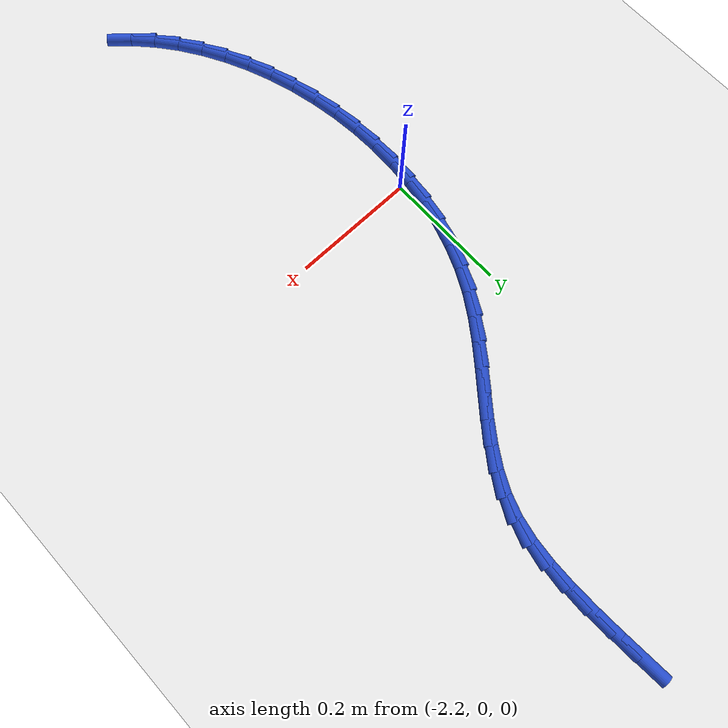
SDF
<sdf version="1.6">
 <world name="default">
  <model name="ground_plane">
   <static>1</static>
   <link name="link">
    <collision name="collision">
     <geometry><plane><normal>0 0 1</normal><size>100 100</size></plane></geometry>
     <surface><friction><ode><mu>100</mu><mu2>50</mu2></ode></friction></surface>
    </collision>
    <visual name="visual">
     <cast_shadows>0</cast_shadows>
     <geometry><plane><normal>0 0 1</normal><size>100 100</size></plane></geometry>
     <material>
      <script><uri>file://media/materials/scripts/gazebo.material</uri><name>Gazebo/WhiteGlow</name></script>
     </material>
    </visual>
   </link>
  </model>
  <model name="line">
   <link name="link_85">
    <pose>-1.9560078254601152 0.7298732089743323 0.01 0 1.57 -1.511912459957005</pose>
    <collision name="collision">
     <geometry><cylinder><radius>0.01</radius><length>0.08</length></cylinder></geometry>
    </collision>
    <visual name="visual">
     <material>
      <script><name>Gazebo/Blue</name><uri>file://media/materials/scripts/gazebo.material</uri></script>
     </material>
     <geometry><cylinder><radius>0.01</radius><length>0.08</length></cylinder></geometry>
    </visual>
   </link>
   <link name="link_86">
    <pose>-1.9533315352913094 0.6844754383890127 0.01 0 1.57 -1.529011360703828</pose>
    <collision name="collision">
     <geometry><cylinder><radius>0.01</radius><length>0.08</length></cylinder></geometry>
    </collision>
    <visual name="visual">
     <material>
      <script><name>Gazebo/Blue</name><uri>file://media/materials/scripts/gazebo.material</uri></script>
     </material>
     <geometry><cylinder><radius>0.01</radius><length>0.08</length></cylinder></geometry>
    </visual>
   </link>
   <link name="link_87">
    <pose>-1.9514861861829915 0.6403381523540678 0.01 0 1.57 -1.5576961679580639</pose>
    <collision name="collision">
     <geometry><cylinder><radius>0.01</radius><length>0.08</length></cylinder></geometry>
    </collision>
    <visual name="visual">
     <material>
      <script><name>Gazebo/Blue</name><uri>file://media/materials/scripts/gazebo.material</uri></script>
     </material>
     <geometry><cylinder><radius>0.01</radius><length>0.08</length></cylinder></geometry>
    </visual>
   </link>
   <link name="link_88">
    <pose>-1.9509324071336889 0.5980678732634406 0.01 0 1.57 1.5370765639163415</pose>
    <collision name="collision">
     <geometry><cylinder><radius>0.01</radius><length>0.08</length></cylinder></geometry>
    </collision>
    <visual name="visual">
     <material>
      <script><name>Gazebo/Blue</name><uri>file://media/materials/scripts/gazebo.material</uri></script>
     </material>
     <geometry><cylinder><radius>0.01</radius><length>0.08</length></cylinder></geometry>
    </visual>
   </link>
   <link name="link_89">
    <pose>-1.9522843035762854 0.557990959621712 0.01 0 1.57 1.4635349359666723</pose>
    <collision name="collision">
     <geometry><cylinder><radius>0.01</radius><length>0.08</length></cylinder></geometry>
    </collision>
    <visual name="visual">
     <material>
      <script><name>Gazebo/Blue</name><uri>file://media/materials/scripts/gazebo.material</uri></script>
     </material>
     <geometry><cylinder><radius>0.01</radius><length>0.08</length></cylinder></geometry>
    </visual>
   </link>
   <link name="link_90">
    <pose>-1.9563704069525913 0.5200423455112528 0.01 0 1.57 1.3605329520495244</pose>
    <collision name="collision">
     <geometry><cylinder><radius>0.01</radius><length>0.08</length></cylinder></geometry>
    </collision>
    <visual name="visual">
     <material>
      <script><name>Gazebo/Blue</name><uri>file://media/materials/scripts/gazebo.material</uri></script>
     </material>
     <geometry><cylinder><radius>0.01</radius><length>0.08</length></cylinder></geometry>
    </visual>
   </link>
   <link name="link_91">
    <pose>-1.9640352004362955 0.48412784589094177 0.01 0 1.57 1.229978556746127</pose>
    <collision name="collision">
     <geometry><cylinder><radius>0.01</radius><length>0.08</length></cylinder></geometry>
    </collision>
    <visual name="visual">
     <material>
      <script><name>Gazebo/Blue</name><uri>file://media/materials/scripts/gazebo.material</uri></script>
     </material>
     <geometry><cylinder><radius>0.01</radius><length>0.08</length></cylinder></geometry>
    </visual>
   </link>
   <link name="link_92">
    <pose>-1.9760871636983892 0.45014584344557457 0.01 0 1.57 1.101145402642583</pose>
    <collision name="collision">
     <geometry><cylinder><radius>0.01</radius><length>0.08</length></cylinder></geometry>
    </collision>
    <visual name="visual">
     <material>
      <script><name>Gazebo/Blue</name><uri>file://media/materials/scripts/gazebo.material</uri></script>
     </material>
     <geometry><cylinder><radius>0.01</radius><length>0.08</length></cylinder></geometry>
    </visual>
   </link>
   <link name="link_93">
    <pose>-1.992492921843389 0.4178209351611334 0.01 0 1.57 1.002379648864908</pose>
    <collision name="collision">
     <geometry><cylinder><radius>0.01</radius><length>0.08</length></cylinder></geometry>
    </collision>
    <visual name="visual">
     <material>
      <script><name>Gazebo/Blue</name><uri>file://media/materials/scripts/gazebo.material</uri></script>
     </material>
     <geometry><cylinder><radius>0.01</radius><length>0.08</length></cylinder></geometry>
    </visual>
   </link>
   <link name="link_94">
    <pose>-2.012369521328703 0.38670233782758484 0.01 0 1.57 0.9347366790663412</pose>
    <collision name="collision">
     <geometry><cylinder><radius>0.01</radius><length>0.08</length></cylinder></geometry>
    </collision>
    <visual name="visual">
     <material>
      <script><name>Gazebo/Blue</name><uri>file://media/materials/scripts/gazebo.material</uri></script>
     </material>
     <geometry><cylinder><radius>0.01</radius><length>0.08</length></cylinder></geometry>
    </visual>
   </link>
   <link name="link_95">
    <pose>-2.0347964602525175 0.3563315170530328 0.01 0 1.57 0.8962274287948078</pose>
    <collision name="collision">
     <geometry><cylinder><radius>0.01</radius><length>0.08</length></cylinder></geometry>
    </collision>
    <visual name="visual">
     <material>
      <script><name>Gazebo/Blue</name><uri>file://media/materials/scripts/gazebo.material</uri></script>
     </material>
     <geometry><cylinder><radius>0.01</radius><length>0.08</length></cylinder></geometry>
    </visual>
   </link>
   <link name="link_96">
    <pose>-2.058853236713022 0.32624993844558203 0.01 0 1.57 0.8847619582352867</pose>
    <collision name="collision">
     <geometry><cylinder><radius>0.01</radius><length>0.08</length></cylinder></geometry>
    </collision>
    <visual name="visual">
     <material>
      <script><name>Gazebo/Blue</name><uri>file://media/materials/scripts/gazebo.material</uri></script>
     </material>
     <geometry><cylinder><radius>0.01</radius><length>0.08</length></cylinder></geometry>
    </visual>
   </link>
   <link name="link_97">
    <pose>-2.083619348808406 0.29599906761333616 0.01 0 1.57 0.8989849952550716</pose>
    <collision name="collision">
     <geometry><cylinder><radius>0.01</radius><length>0.08</length></cylinder></geometry>
    </collision>
    <visual name="visual">
     <material>
      <script><name>Gazebo/Blue</name><uri>file://media/materials/scripts/gazebo.material</uri></script>
     </material>
     <geometry><cylinder><radius>0.01</radius><length>0.08</length></cylinder></geometry>
    </visual>
   </link>
   <link name="link_98">
    <pose>-2.108174294636855 0.26512037016439977 0.01 0 1.57 0.9384089984841676</pose>
    <collision name="collision">
     <geometry><cylinder><radius>0.01</radius><length>0.08</length></cylinder></geometry>
    </collision>
    <visual name="visual">
     <material>
      <script><name>Gazebo/Blue</name><uri>file://media/materials/scripts/gazebo.material</uri></script>
     </material>
     <geometry><cylinder><radius>0.01</radius><length>0.08</length></cylinder></geometry>
    </visual>
   </link>
   <link name="link_99">
    <pose>-2.1315975722965588 0.23315531170687698 0.01 0 1.57 1.003078110541893</pose>
    <collision name="collision">
     <geometry><cylinder><radius>0.01</radius><length>0.08</length></cylinder></geometry>
    </collision>
    <visual name="visual">
     <material>
      <script><name>Gazebo/Blue</name><uri>file://media/materials/scripts/gazebo.material</uri></script>
     </material>
     <geometry><cylinder><radius>0.01</radius><length>0.08</length></cylinder></geometry>
    </visual>
   </link>
   <link name="link_100">
    <pose>-2.152968679885705 0.19964535784887202 0.01 0 1.57 1.0897424755845704</pose>
    <collision name="collision">
     <geometry><cylinder><radius>0.01</radius><length>0.08</length></cylinder></geometry>
    </collision>
    <visual name="visual">
     <material>
      <script><name>Gazebo/Blue</name><uri>file://media/materials/scripts/gazebo.material</uri></script>
     </material>
     <geometry><cylinder><radius>0.01</radius><length>0.08</length></cylinder></geometry>
    </visual>
   </link>
   <link name="link_101">
    <pose>-2.171465822064752 0.16420689721593096 0.01 0 1.57 1.1783790032146493</pose>
    <collision name="collision">
     <geometry><cylinder><radius>0.01</radius><length>0.08</length></cylinder></geometry>
    </collision>
    <visual name="visual">
     <material>
      <script><name>Gazebo/Blue</name><uri>file://media/materials/scripts/gazebo.material</uri></script>
     </material>
     <geometry><cylinder><radius>0.01</radius><length>0.08</length></cylinder></geometry>
    </visual>
   </link>
   <link name="link_102">
    <pose>-2.1868934300383454 0.126931654431678 0.01 0 1.57 1.2615539943299752</pose>
    <collision name="collision">
     <geometry><cylinder><radius>0.01</radius><length>0.08</length></cylinder></geometry>
    </collision>
    <visual name="visual">
     <material>
      <script><name>Gazebo/Blue</name><uri>file://media/materials/scripts/gazebo.material</uri></script>
     </material>
     <geometry><cylinder><radius>0.01</radius><length>0.08</length></cylinder></geometry>
    </visual>
   </link>
   <link name="link_103">
    <pose>-2.19930074621588 0.08809717757201214 0.01 0 1.57 1.3397567844039873</pose>
    <collision name="collision">
     <geometry><cylinder><radius>0.01</radius><length>0.08</length></cylinder></geometry>
    </collision>
    <visual name="visual">
     <material>
      <script><name>Gazebo/Blue</name><uri>file://media/materials/scripts/gazebo.material</uri></script>
     </material>
     <geometry><cylinder><radius>0.01</radius><length>0.08</length></cylinder></geometry>
    </visual>
   </link>
   <link name="link_104">
    <pose>-2.2087375780199454 0.04798144358496218 0.01 0 1.57 1.413632643874463</pose>
    <collision name="collision">
     <geometry><cylinder><radius>0.01</radius><length>0.08</length></cylinder></geometry>
    </collision>
    <visual name="visual">
     <material>
      <script><name>Gazebo/Blue</name><uri>file://media/materials/scripts/gazebo.material</uri></script>
     </material>
     <geometry><cylinder><radius>0.01</radius><length>0.08</length></cylinder></geometry>
    </visual>
   </link>
   <link name="link_105">
    <pose>-2.2152537328731294 0.006862429418557037 0.01 0 1.57 1.4839002835513833</pose>
    <collision name="collision">
     <geometry><cylinder><radius>0.01</radius><length>0.08</length></cylinder></geometry>
    </collision>
    <visual name="visual">
     <material>
      <script><name>Gazebo/Blue</name><uri>file://media/materials/scripts/gazebo.material</uri></script>
     </material>
     <geometry><cylinder><radius>0.01</radius><length>0.08</length></cylinder></geometry>
    </visual>
   </link>
   <link name="link_106">
    <pose>-2.218899018198022 -0.03498188797917434 0.01 0 1.57 1.551309761165724</pose>
    <collision name="collision">
     <geometry><cylinder><radius>0.01</radius><length>0.08</length></cylinder></geometry>
    </collision>
    <visual name="visual">
     <material>
      <script><name>Gazebo/Blue</name><uri>file://media/materials/scripts/gazebo.material</uri></script>
     </material>
     <geometry><cylinder><radius>0.01</radius><length>0.08</length></cylinder></geometry>
    </visual>
   </link>
   <link name="link_107">
    <pose>-2.219723241417214 -0.0772735316602031 0.01 0 1.57 -1.524973834030474</pose>
    <collision name="collision">
     <geometry><cylinder><radius>0.01</radius><length>0.08</length></cylinder></geometry>
    </collision>
    <visual name="visual">
     <material>
      <script><name>Gazebo/Blue</name><uri>file://media/materials/scripts/gazebo.material</uri></script>
     </material>
     <geometry><cylinder><radius>0.01</radius><length>0.08</length></cylinder></geometry>
    </visual>
   </link>
   <link name="link_108">
    <pose>-2.2177762099532927 -0.11973452467650027 0.01 0 1.57 -1.461010080639621</pose>
    <collision name="collision">
     <geometry><cylinder><radius>0.01</radius><length>0.08</length></cylinder></geometry>
    </collision>
    <visual name="visual">
     <material>
      <script><name>Gazebo/Blue</name><uri>file://media/materials/scripts/gazebo.material</uri></script>
     </material>
     <geometry><cylinder><radius>0.01</radius><length>0.08</length></cylinder></geometry>
    </visual>
   </link>
   <link name="link_109">
    <pose>-2.213107731228848 -0.16208689008003685 0.01 0 1.57 -1.3976405923603086</pose>
    <collision name="collision">
     <geometry><cylinder><radius>0.01</radius><length>0.08</length></cylinder></geometry>
    </collision>
    <visual name="visual">
     <material>
      <script><name>Gazebo/Blue</name><uri>file://media/materials/scripts/gazebo.material</uri></script>
     </material>
     <geometry><cylinder><radius>0.01</radius><length>0.08</length></cylinder></geometry>
    </visual>
   </link>
   <link name="link_110">
    <pose>-2.2057676126664707 -0.20405265092278413 0.01 0 1.57 -1.334114573618905</pose>
    <collision name="collision">
     <geometry><cylinder><radius>0.01</radius><length>0.08</length></cylinder></geometry>
    </collision>
    <visual name="visual">
     <material>
      <script><name>Gazebo/Blue</name><uri>file://media/materials/scripts/gazebo.material</uri></script>
     </material>
     <geometry><cylinder><radius>0.01</radius><length>0.08</length></cylinder></geometry>
    </visual>
   </link>
   <link name="link_111">
    <pose>-2.195805661688749 -0.24535383025671312 0.01 0 1.57 -1.269675255398987</pose>
    <collision name="collision">
     <geometry><cylinder><radius>0.01</radius><length>0.08</length></cylinder></geometry>
    </collision>
    <visual name="visual">
     <material>
      <script><name>Gazebo/Blue</name><uri>file://media/materials/scripts/gazebo.material</uri></script>
     </material>
     <geometry><cylinder><radius>0.01</radius><length>0.08</length></cylinder></geometry>
    </visual>
   </link>
   <link name="link_112">
    <pose>-2.183271685718273 -0.28571245113379484 0.01 0 1.57 -1.2035538569398505</pose>
    <collision name="collision">
     <geometry><cylinder><radius>0.01</radius><length>0.08</length></cylinder></geometry>
    </collision>
    <visual name="visual">
     <material>
      <script><name>Gazebo/Blue</name><uri>file://media/materials/scripts/gazebo.material</uri></script>
     </material>
     <geometry><cylinder><radius>0.01</radius><length>0.08</length></cylinder></geometry>
    </visual>
   </link>
   <link name="link_113">
    <pose>-2.1682154921776307 -0.3248505366060004 0.01 0 1.57 -1.134966433561842</pose>
    <collision name="collision">
     <geometry><cylinder><radius>0.01</radius><length>0.08</length></cylinder></geometry>
    </collision>
    <visual name="visual">
     <material>
      <script><name>Gazebo/Blue</name><uri>file://media/materials/scripts/gazebo.material</uri></script>
     </material>
     <geometry><cylinder><radius>0.01</radius><length>0.08</length></cylinder></geometry>
    </visual>
   </link>
   <link name="link_114">
    <pose>-2.150686888489413 -0.36249010972530094 0.01 0 1.57 -1.0631169353441734</pose>
    <collision name="collision">
     <geometry><cylinder><radius>0.01</radius><length>0.08</length></cylinder></geometry>
    </collision>
    <visual name="visual">
     <material>
      <script><name>Gazebo/Blue</name><uri>file://media/materials/scripts/gazebo.material</uri></script>
     </material>
     <geometry><cylinder><radius>0.01</radius><length>0.08</length></cylinder></geometry>
    </visual>
   </link>
   <link name="link_115">
    <pose>-2.130735682076209 -0.3983531935436675 0.01 0 1.57 -0.9872108435500432</pose>
    <collision name="collision">
     <geometry><cylinder><radius>0.01</radius><length>0.08</length></cylinder></geometry>
    </collision>
    <visual name="visual">
     <material>
      <script><name>Gazebo/Blue</name><uri>file://media/materials/scripts/gazebo.material</uri></script>
     </material>
     <geometry><cylinder><radius>0.01</radius><length>0.08</length></cylinder></geometry>
    </visual>
   </link>
   <link name="link_116">
    <pose>-2.1084116803606086 -0.4321618111130705 0.01 0 1.57 -0.9064849853445721</pose>
    <collision name="collision">
     <geometry><cylinder><radius>0.01</radius><length>0.08</length></cylinder></geometry>
    </collision>
    <visual name="visual">
     <material>
      <script><name>Gazebo/Blue</name><uri>file://media/materials/scripts/gazebo.material</uri></script>
     </material>
     <geometry><cylinder><radius>0.01</radius><length>0.08</length></cylinder></geometry>
    </visual>
   </link>
   <link name="link_117">
    <pose>-2.083764690765199 -0.4636379854854824 0.01 0 1.57 -0.8202599309860167</pose>
    <collision name="collision">
     <geometry><cylinder><radius>0.01</radius><length>0.08</length></cylinder></geometry>
    </collision>
    <visual name="visual">
     <material>
      <script><name>Gazebo/Blue</name><uri>file://media/materials/scripts/gazebo.material</uri></script>
     </material>
     <geometry><cylinder><radius>0.01</radius><length>0.08</length></cylinder></geometry>
    </visual>
   </link>
   <link name="link_118">
    <pose>-2.0568445207125716 -0.49250373971287353 0.01 0 1.57 -0.7280204608544009</pose>
    <collision name="collision">
     <geometry><cylinder><radius>0.01</radius><length>0.08</length></cylinder></geometry>
    </collision>
    <visual name="visual">
     <material>
      <script><name>Gazebo/Blue</name><uri>file://media/materials/scripts/gazebo.material</uri></script>
     </material>
     <geometry><cylinder><radius>0.01</radius><length>0.08</length></cylinder></geometry>
    </visual>
   </link>
  </model>
 </world>
</sdf>
